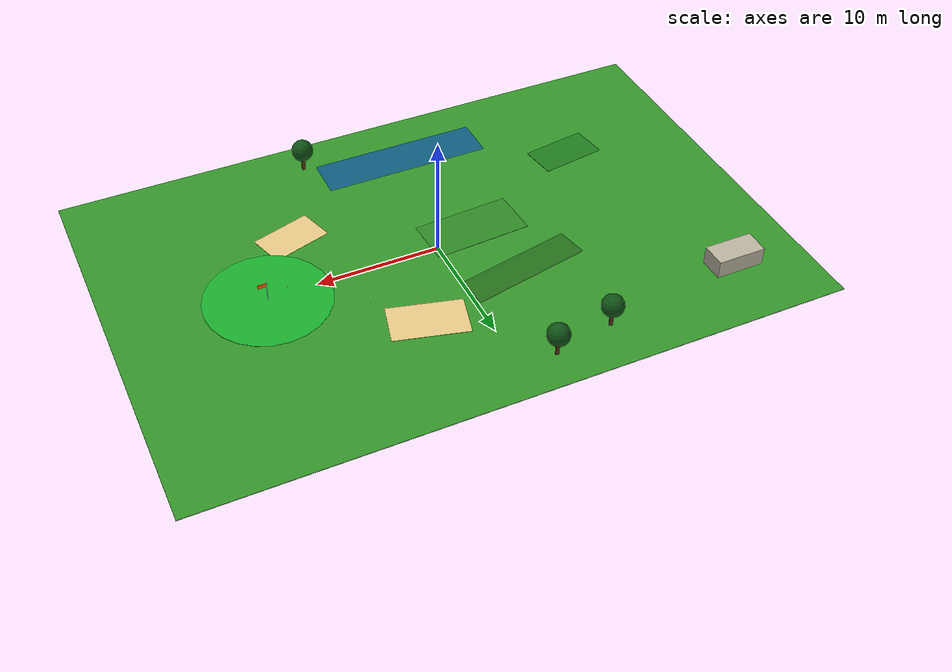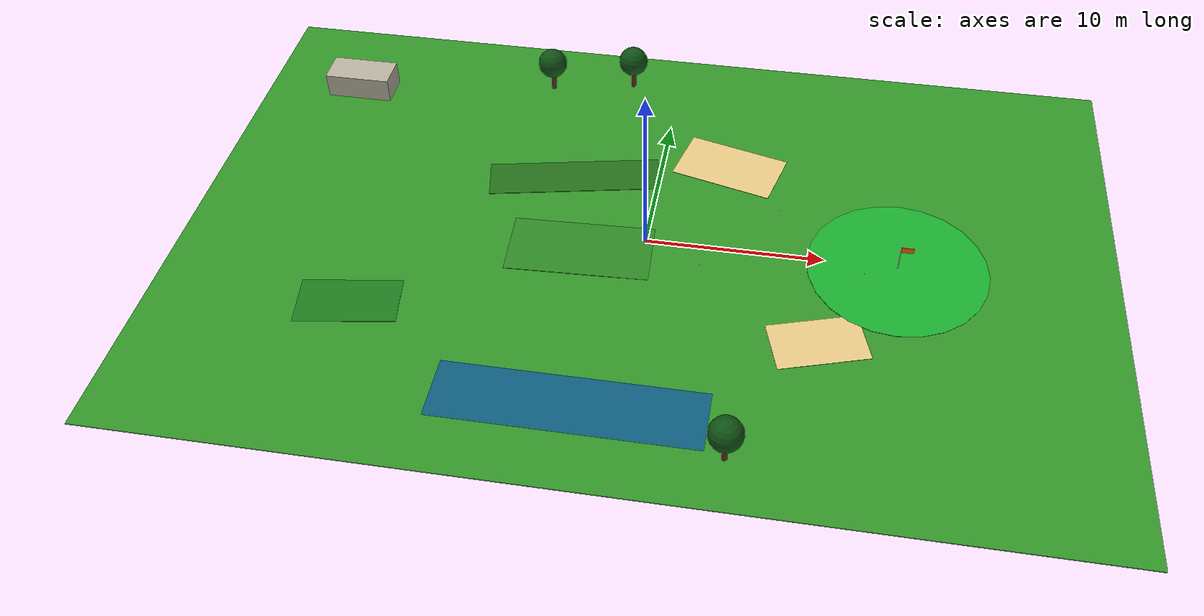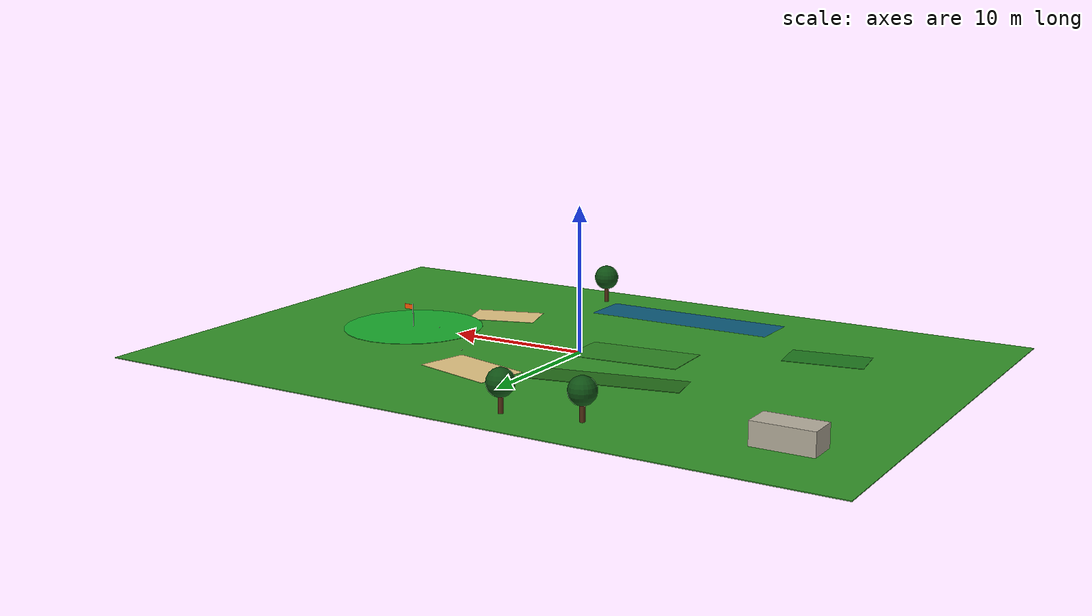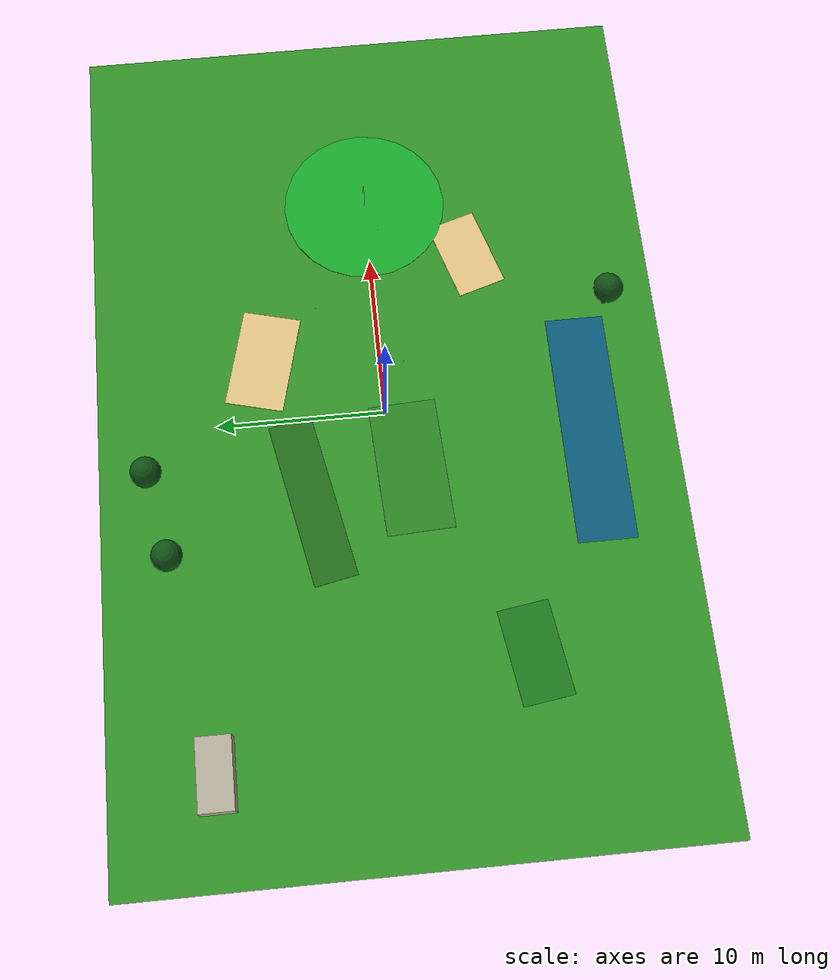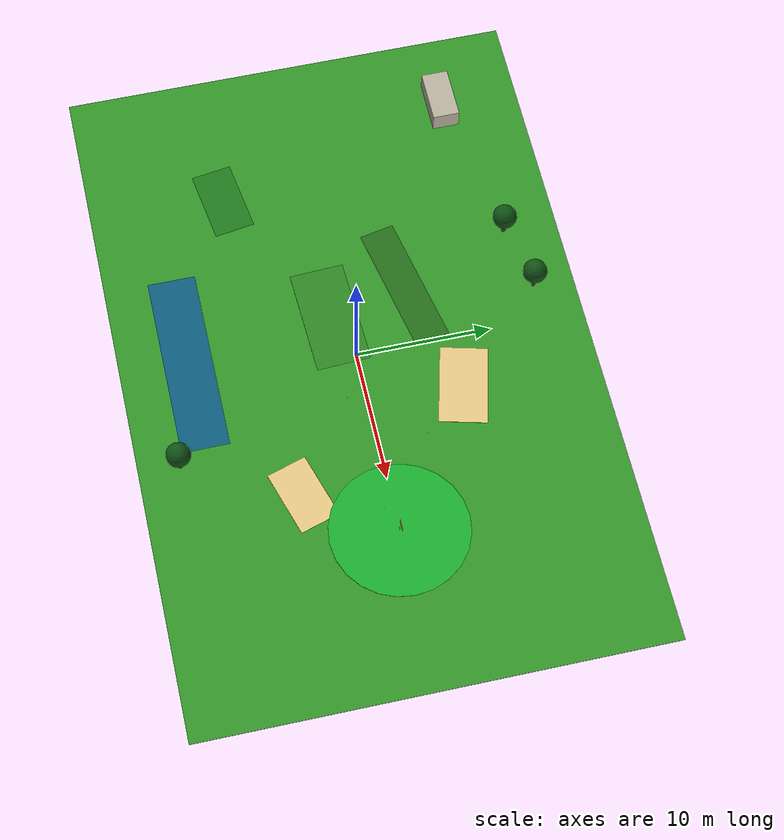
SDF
<?xml version="1.0"?>
<sdf version="1.9">
  <world name="wso2_caddie_course">
    <plugin filename="gz-sim-physics-system" name="gz::sim::systems::Physics"/>
    <plugin filename="gz-sim-user-commands-system" name="gz::sim::systems::UserCommands"/>
    <plugin filename="gz-sim-scene-broadcaster-system" name="gz::sim::systems::SceneBroadcaster"/>
    <plugin filename="gz-sim-sensors-system" name="gz::sim::systems::Sensors">
      <render_engine>ogre2</render_engine>
    </plugin>
    <plugin filename="gz-sim-imu-system" name="gz::sim::systems::Imu"/>

    <physics name="caddie_physics" type="ignored">
      <max_step_size>0.004</max_step_size>
      <real_time_factor>1.0</real_time_factor>
    </physics>

    <scene>
      <ambient>0.75 0.78 0.72 1</ambient>
      <background>0.55 0.76 0.95 1</background>
      <shadows>true</shadows>
      <grid>false</grid>
    </scene>

    <light name="sun" type="directional">
      <cast_shadows>true</cast_shadows>
      <pose>-5 -6 10 0 0 0</pose>
      <diffuse>1 0.94 0.82 1</diffuse>
      <specular>0.25 0.22 0.18 1</specular>
      <direction>0.45 0.25 -0.85</direction>
    </light>

    <model name="fairway">
      <static>true</static>
      <pose>0 0 -0.03 0 0 0</pose>
      <link name="fairway_link">
        <collision name="collision">
          <geometry>
            <box>
              <size>52 34 0.06</size>
            </box>
          </geometry>
        </collision>
        <visual name="visual">
          <geometry>
            <box>
              <size>52 34 0.06</size>
            </box>
          </geometry>
          <material>
            <ambient>0.16 0.43 0.12 1</ambient>
            <diffuse>0.20 0.58 0.16 1</diffuse>
            <specular>0.03 0.05 0.03 1</specular>
          </material>
        </visual>
      </link>
    </model>

    <model name="putting_green">
      <static>true</static>
      <pose>14 0 0.01 0 0 0</pose>
      <link name="green_link">
        <collision name="collision">
          <geometry>
            <cylinder>
              <radius>5.0</radius>
              <length>0.03</length>
            </cylinder>
          </geometry>
        </collision>
        <visual name="visual">
          <geometry>
            <cylinder>
              <radius>5.0</radius>
              <length>0.03</length>
            </cylinder>
          </geometry>
          <material>
            <ambient>0.08 0.50 0.12 1</ambient>
            <diffuse>0.10 0.68 0.18 1</diffuse>
          </material>
        </visual>
      </link>
    </model>

    <model name="tee_box">
      <static>true</static>
      <pose>-15 -7 0.015 0 0 0.15</pose>
      <link name="tee_link">
        <collision name="collision">
          <geometry>
            <box>
              <size>5.5 3.0 0.03</size>
            </box>
          </geometry>
        </collision>
        <visual name="visual">
          <geometry>
            <box>
              <size>5.5 3.0 0.03</size>
            </box>
          </geometry>
          <material>
            <ambient>0.10 0.36 0.10 1</ambient>
            <diffuse>0.12 0.48 0.12 1</diffuse>
          </material>
        </visual>
      </link>
    </model>

    <model name="fairway_mound">
      <static>true</static>
      <pose>-3.5 -1.2 0.035 0 0.012 0.05</pose>
      <link name="mound_link">
        <collision name="collision">
          <geometry>
            <box>
              <size>8.0 4.0 0.035</size>
            </box>
          </geometry>
        </collision>
        <visual name="visual">
          <geometry>
            <box>
              <size>8.0 4.0 0.035</size>
            </box>
          </geometry>
          <material>
            <ambient>0.14 0.40 0.11 1</ambient>
            <diffuse>0.18 0.53 0.14 1</diffuse>
            <specular>0.03 0.05 0.03 1</specular>
          </material>
        </visual>
      </link>
    </model>

    <model name="rough_grass_strip">
      <static>true</static>
      <pose>-5.0 4.7 0.018 0 0 0.20</pose>
      <link name="rough_link">
        <collision name="collision">
          <geometry>
            <box>
              <size>10.0 2.6 0.035</size>
            </box>
          </geometry>
        </collision>
        <visual name="visual">
          <geometry>
            <box>
              <size>10.0 2.6 0.035</size>
            </box>
          </geometry>
          <material>
            <ambient>0.10 0.31 0.08 1</ambient>
            <diffuse>0.14 0.43 0.10 1</diffuse>
            <specular>0.02 0.03 0.02 1</specular>
          </material>
        </visual>
      </link>
    </model>

    <model name="left_bunker">
      <static>true</static>
      <pose>4 7 0.01 0 0 -0.25</pose>
      <link name="bunker_link">
        <collision name="collision">
          <geometry>
            <box>
              <size>6 3.5 0.025</size>
            </box>
          </geometry>
        </collision>
        <visual name="visual">
          <geometry>
            <box>
              <size>6 3.5 0.025</size>
            </box>
          </geometry>
          <material>
            <ambient>0.78 0.67 0.45 1</ambient>
            <diffuse>0.90 0.78 0.52 1</diffuse>
          </material>
        </visual>
      </link>
    </model>

    <model name="right_bunker">
      <static>true</static>
      <pose>10 -6 0.01 0 0 0.3</pose>
      <link name="bunker_link">
        <collision name="collision">
          <geometry>
            <box>
              <size>5 3 0.025</size>
            </box>
          </geometry>
        </collision>
        <visual name="visual">
          <geometry>
            <box>
              <size>5 3 0.025</size>
            </box>
          </geometry>
          <material>
            <ambient>0.78 0.67 0.45 1</ambient>
            <diffuse>0.90 0.78 0.52 1</diffuse>
          </material>
        </visual>
      </link>
    </model>

    <model name="water_hazard">
      <static>true</static>
      <pose>-2 -12 0.005 0 0 0</pose>
      <link name="water_link">
        <collision name="collision">
          <geometry>
            <box>
              <size>14 3.5 0.01</size>
            </box>
          </geometry>
        </collision>
        <visual name="visual">
          <geometry>
            <box>
              <size>14 3.5 0.01</size>
            </box>
          </geometry>
          <material>
            <ambient>0.02 0.22 0.42 0.72</ambient>
            <diffuse>0.04 0.32 0.66 0.72</diffuse>
          </material>
        </visual>
      </link>
    </model>

    <model name="flag_pin">
      <static>true</static>
      <pose>14 0 0 0 0 0</pose>
      <link name="pin_link">
        <visual name="pole">
          <pose>0 0 0.85 0 0 0</pose>
          <geometry>
            <cylinder>
              <radius>0.025</radius>
              <length>1.7</length>
            </cylinder>
          </geometry>
          <material>
            <diffuse>1 1 1 1</diffuse>
          </material>
        </visual>
        <visual name="flag">
          <pose>0.35 0 1.45 0 0 0</pose>
          <geometry>
            <box>
              <size>0.7 0.025 0.35</size>
            </box>
          </geometry>
          <material>
            <ambient>1 0.36 0.02 1</ambient>
            <diffuse>1 0.36 0.02 1</diffuse>
          </material>
        </visual>
      </link>
    </model>

    <model name="clubhouse_marker">
      <static>true</static>
      <pose>-20 11 0.75 0 0 0</pose>
      <link name="clubhouse_link">
        <collision name="collision">
          <geometry>
            <box>
              <size>4 2 1.5</size>
            </box>
          </geometry>
        </collision>
        <visual name="visual">
          <geometry>
            <box>
              <size>4 2 1.5</size>
            </box>
          </geometry>
          <material>
            <ambient>0.65 0.62 0.56 1</ambient>
            <diffuse>0.72 0.69 0.62 1</diffuse>
          </material>
        </visual>
      </link>
    </model>

    <model name="golf_ball_1">
      <static>false</static>
      <pose>3.2 -1.4 0.03 0 0 0</pose>
      <link name="ball_link">
        <inertial>
          <mass>0.046</mass>
          <inertia>
            <ixx>0.000016</ixx>
            <iyy>0.000016</iyy>
            <izz>0.000016</izz>
          </inertia>
        </inertial>
        <collision name="collision">
          <geometry>
            <sphere>
              <radius>0.03</radius>
            </sphere>
          </geometry>
        </collision>
        <visual name="visual">
          <geometry>
            <sphere>
              <radius>0.03</radius>
            </sphere>
          </geometry>
          <material>
            <ambient>1 1 0.94 1</ambient>
            <diffuse>1 1 0.96 1</diffuse>
          </material>
        </visual>
      </link>
    </model>

    <model name="golf_ball_2">
      <static>false</static>
      <pose>7.2 3.6 0.03 0 0 0</pose>
      <link name="ball_link">
        <inertial>
          <mass>0.046</mass>
          <inertia>
            <ixx>0.000016</ixx>
            <iyy>0.000016</iyy>
            <izz>0.000016</izz>
          </inertia>
        </inertial>
        <collision name="collision">
          <geometry>
            <sphere>
              <radius>0.03</radius>
            </sphere>
          </geometry>
        </collision>
        <visual name="visual">
          <geometry>
            <sphere>
              <radius>0.03</radius>
            </sphere>
          </geometry>
          <material>
            <ambient>1 1 0.94 1</ambient>
            <diffuse>1 1 0.96 1</diffuse>
          </material>
        </visual>
      </link>
    </model>

    <model name="golf_ball_3">
      <static>false</static>
      <pose>12.2 -0.7 0.03 0 0 0</pose>
      <link name="ball_link">
        <inertial>
          <mass>0.046</mass>
          <inertia>
            <ixx>0.000016</ixx>
            <iyy>0.000016</iyy>
            <izz>0.000016</izz>
          </inertia>
        </inertial>
        <collision name="collision">
          <geometry>
            <sphere>
              <radius>0.03</radius>
            </sphere>
          </geometry>
        </collision>
        <visual name="visual">
          <geometry>
            <sphere>
              <radius>0.03</radius>
            </sphere>
          </geometry>
          <material>
            <ambient>1 1 0.94 1</ambient>
            <diffuse>1 1 0.96 1</diffuse>
          </material>
        </visual>
      </link>
    </model>

    <model name="tree_row_1">
      <static>true</static>
      <pose>-8 13 0 0 0 0</pose>
      <link name="tree_link">
        <visual name="trunk">
          <pose>0 0 0.8 0 0 0</pose>
          <geometry>
            <cylinder>
              <radius>0.16</radius>
              <length>1.6</length>
            </cylinder>
          </geometry>
          <material>
            <diffuse>0.33 0.19 0.08 1</diffuse>
          </material>
        </visual>
        <collision name="trunk_collision">
          <pose>0 0 0.8 0 0 0</pose>
          <geometry>
            <cylinder>
              <radius>0.16</radius>
              <length>1.6</length>
            </cylinder>
          </geometry>
        </collision>
        <visual name="canopy">
          <pose>0 0 1.9 0 0 0</pose>
          <geometry>
            <sphere>
              <radius>0.9</radius>
            </sphere>
          </geometry>
          <material>
            <diffuse>0.06 0.32 0.08 1</diffuse>
          </material>
        </visual>
      </link>
    </model>

    <model name="tree_row_2">
      <static>true</static>
      <pose>-3 14 0 0 0 0</pose>
      <link name="tree_link">
        <visual name="trunk">
          <pose>0 0 0.8 0 0 0</pose>
          <geometry>
            <cylinder>
              <radius>0.16</radius>
              <length>1.6</length>
            </cylinder>
          </geometry>
          <material>
            <diffuse>0.33 0.19 0.08 1</diffuse>
          </material>
        </visual>
        <collision name="trunk_collision">
          <pose>0 0 0.8 0 0 0</pose>
          <geometry>
            <cylinder>
              <radius>0.16</radius>
              <length>1.6</length>
            </cylinder>
          </geometry>
        </collision>
        <visual name="canopy">
          <pose>0 0 1.9 0 0 0</pose>
          <geometry>
            <sphere>
              <radius>0.9</radius>
            </sphere>
          </geometry>
          <material>
            <diffuse>0.06 0.32 0.08 1</diffuse>
          </material>
        </visual>
      </link>
    </model>

    <model name="tree_row_3">
      <static>true</static>
      <pose>6 -14 0 0 0 0</pose>
      <link name="tree_link">
        <visual name="trunk">
          <pose>0 0 0.8 0 0 0</pose>
          <geometry>
            <cylinder>
              <radius>0.16</radius>
              <length>1.6</length>
            </cylinder>
          </geometry>
          <material>
            <diffuse>0.33 0.19 0.08 1</diffuse>
          </material>
        </visual>
        <collision name="trunk_collision">
          <pose>0 0 0.8 0 0 0</pose>
          <geometry>
            <cylinder>
              <radius>0.16</radius>
              <length>1.6</length>
            </cylinder>
          </geometry>
        </collision>
        <visual name="canopy">
          <pose>0 0 1.9 0 0 0</pose>
          <geometry>
            <sphere>
              <radius>0.9</radius>
            </sphere>
          </geometry>
          <material>
            <diffuse>0.06 0.32 0.08 1</diffuse>
          </material>
        </visual>
      </link>
    </model>
  </world>
</sdf>
